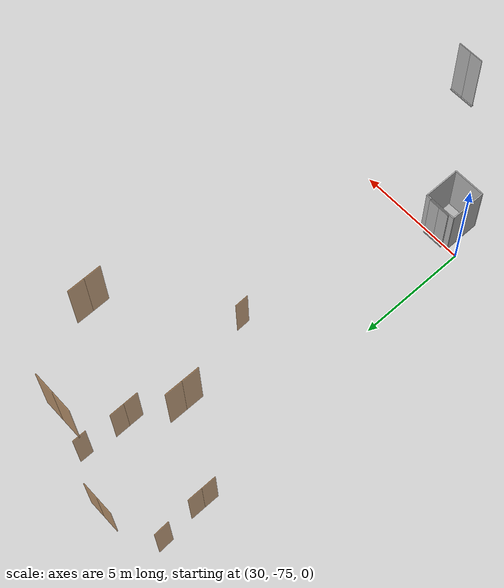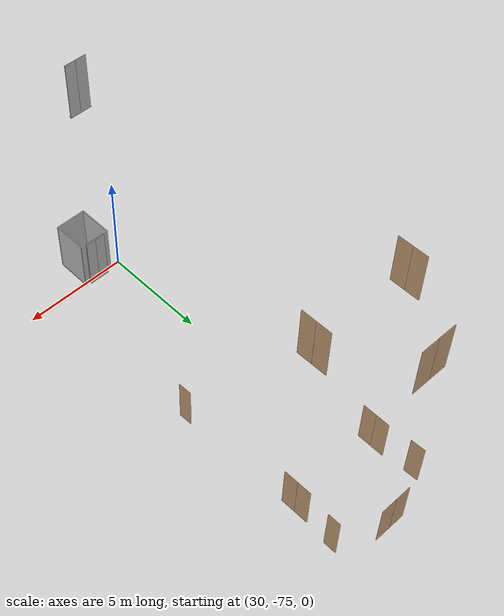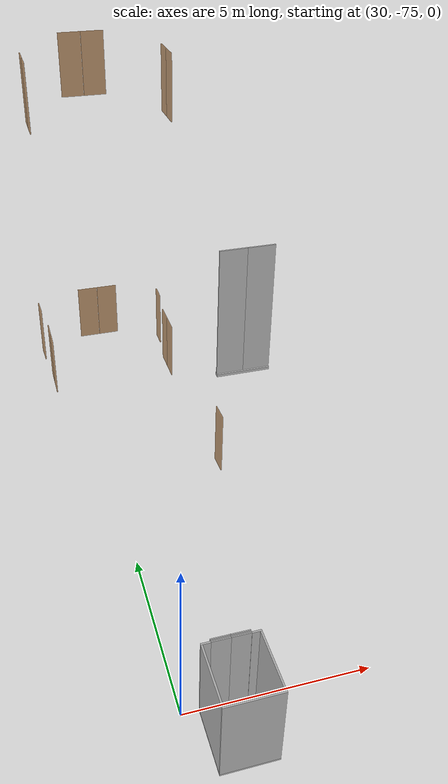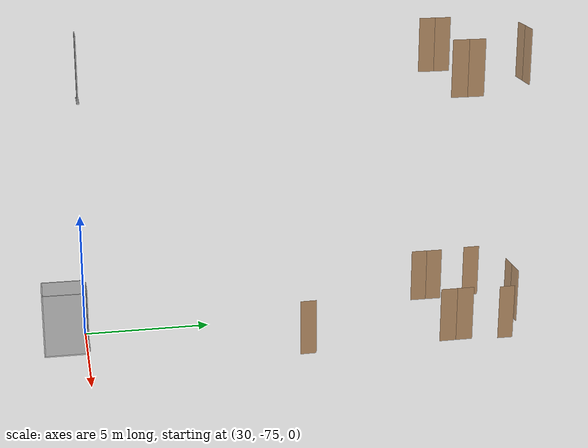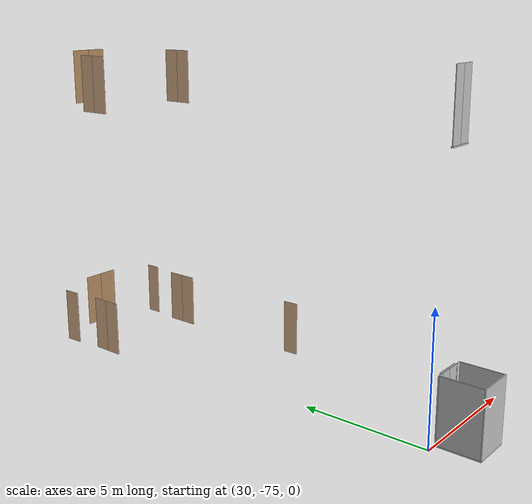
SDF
<sdf version="1.7">
 <world name="sim_world">
  <model name="door12">
   <pose>28.935081226566922 -60.41372925217037 0.0 0 0 1.569960739769453</pose>
   <link name="right">
    <pose>0.3295156354562787 0 1.11 0 0 0</pose>
    <visual name="right_visual">
     <geometry><box><size>0.6490312709125574 0.03 2.2</size></box></geometry>
     <material>
      <ambient>0.5 0.25 0 0.6</ambient>
      <diffuse>0.5 0.25 0 0.6</diffuse>
      <pbr><metal><metalness>0.0</metalness></metal></pbr>
     </material>
    </visual>
    <collision name="right_collision">
     <geometry><box><size>0.6490312709125574 0.03 2.2</size></box></geometry>
     <surface><contact><collide_bitmask>0x02</collide_bitmask></contact></surface>
    </collision>
    <inertial>
     <mass>50.0</mass>
     <inertia><ixx>20.17041666666667</ixx><iyy>21.921839960926548</iyy><izz>1.7589232942598731</izz></inertia>
    </inertial>
   </link>
   <joint name="right_joint" type="revolute">
    <parent>world</parent>
    <child>right</child>
    <axis><xyz>0 0 1</xyz><limit><lower>0</lower><upper>1.57</upper></limit></axis>
    <pose>0.3295156354562787 0 0 0 0 0</pose>
   </joint>
   <link name="left">
    <pose>-0.3295156354562787 0 1.11 0 0 0</pose>
    <visual name="left_visual">
     <geometry><box><size>0.6490312709125574 0.03 2.2</size></box></geometry>
     <material>
      <ambient>0.5 0.25 0 0.6</ambient>
      <diffuse>0.5 0.25 0 0.6</diffuse>
      <pbr><metal><metalness>0.0</metalness></metal></pbr>
     </material>
    </visual>
    <collision name="left_collision">
     <geometry><box><size>0.6490312709125574 0.03 2.2</size></box></geometry>
     <surface><contact><collide_bitmask>0x02</collide_bitmask></contact></surface>
    </collision>
    <inertial>
     <mass>50.0</mass>
     <inertia><ixx>20.17041666666667</ixx><iyy>21.921839960926548</iyy><izz>1.7589232942598731</izz></inertia>
    </inertial>
   </link>
   <joint name="left_joint" type="revolute">
    <parent>world</parent>
    <child>left</child>
    <axis><xyz>0 0 1</xyz><limit><lower>-1.57</lower><upper>0</upper></limit></axis>
    <pose>-0.3295156354562787 0 0 0 0 0</pose>
   </joint>
   <plugin name="register_component" filename="libregister_component.so">
    <component name="Door">
     <v_max_door>0.5</v_max_door>
     <a_max_door>0.3</a_max_door>
     <a_nom_door>0.15</a_nom_door>
     <dx_min_door>0.01</dx_min_door>
     <f_max_door>500.0</f_max_door>
     <ros_interface>true</ros_interface>
     <door name="door12" type="DoubleSwingDoor" left_joint_name="left_joint" right_joint_name="right_joint"/>
    </component>
   </plugin>
  </model>
  <model name="door14">
   <pose>28.795455392001728 -58.3927413031863 0.0 0 0 1.6107948883778462</pose>
   <link name="right">
    <pose>0 0 1.11 0 0 0</pose>
    <visual name="right_visual">
     <geometry><box><size>0.6894276678556776 0.03 2.2</size></box></geometry>
     <material>
      <ambient>0.5 0.25 0 0.6</ambient>
      <diffuse>0.5 0.25 0 0.6</diffuse>
      <pbr><metal><metalness>0.0</metalness></metal></pbr>
     </material>
    </visual>
    <collision name="right_collision">
     <geometry><box><size>0.6894276678556776 0.03 2.2</size></box></geometry>
     <surface><contact><collide_bitmask>0x02</collide_bitmask></contact></surface>
    </collision>
    <inertial>
     <mass>50.0</mass>
     <inertia><ixx>20.17041666666667</ixx><iyy>22.147127121687166</iyy><izz>1.9842104550204938</izz></inertia>
    </inertial>
   </link>
   <joint name="right_joint" type="revolute">
    <parent>world</parent>
    <child>right</child>
    <axis><xyz>0 0 1</xyz><limit><lower>0</lower><upper>1.57</upper></limit></axis>
    <pose>0.3497138339278388 0 0 0 0 0</pose>
   </joint>
   <plugin name="register_component" filename="libregister_component.so">
    <component name="Door">
     <v_max_door>0.5</v_max_door>
     <a_max_door>0.3</a_max_door>
     <a_nom_door>0.15</a_nom_door>
     <dx_min_door>0.01</dx_min_door>
     <f_max_door>500.0</f_max_door>
     <ros_interface>true</ros_interface>
     <door name="door14" type="SwingDoor" left_joint_name="empty_joint" right_joint_name="right_joint"/>
    </component>
   </plugin>
  </model>
  <model name="door15">
   <pose>33.50102716089975 -58.43092646915197 0.0 0 0 1.5700952612900068</pose>
   <link name="right">
    <pose>0 0 1.11 0 0 0</pose>
    <visual name="right_visual">
     <geometry><box><size>0.6101214510655555 0.03 2.2</size></box></geometry>
     <material>
      <ambient>0.5 0.25 0 0.6</ambient>
      <diffuse>0.5 0.25 0 0.6</diffuse>
      <pbr><metal><metalness>0.0</metalness></metal></pbr>
     </material>
    </visual>
    <collision name="right_collision">
     <geometry><box><size>0.6101214510655555 0.03 2.2</size></box></geometry>
     <surface><contact><collide_bitmask>0x02</collide_bitmask></contact></surface>
    </collision>
    <inertial>
     <mass>50.0</mass>
     <inertia><ixx>20.17041666666667</ixx><iyy>21.717700771043084</iyy><izz>1.5547841043764128</izz></inertia>
    </inertial>
   </link>
   <joint name="right_joint" type="revolute">
    <parent>world</parent>
    <child>right</child>
    <axis><xyz>0 0 -1</xyz><limit><lower>0</lower><upper>1.57</upper></limit></axis>
    <pose>0.31006072553277775 0 0 0 0 0</pose>
   </joint>
   <plugin name="register_component" filename="libregister_component.so">
    <component name="Door">
     <v_max_door>0.5</v_max_door>
     <a_max_door>0.3</a_max_door>
     <a_nom_door>0.15</a_nom_door>
     <dx_min_door>0.01</dx_min_door>
     <f_max_door>500.0</f_max_door>
     <ros_interface>true</ros_interface>
     <door name="door15" type="SwingDoor" left_joint_name="empty_joint" right_joint_name="right_joint"/>
    </component>
   </plugin>
  </model>
  <model name="door13">
   <pose>33.36353158037515 -60.44103128354773 0.0 0 0 1.5796133810395057</pose>
   <link name="right">
    <pose>0.3377598348170645 0 1.11 0 0 0</pose>
    <visual name="right_visual">
     <geometry><box><size>0.665519669634129 0.03 2.2</size></box></geometry>
     <material>
      <ambient>0.5 0.25 0 0.6</ambient>
      <diffuse>0.5 0.25 0 0.6</diffuse>
      <pbr><metal><metalness>0.0</metalness></metal></pbr>
     </material>
    </visual>
    <collision name="right_collision">
     <geometry><box><size>0.665519669634129 0.03 2.2</size></box></geometry>
     <surface><contact><collide_bitmask>0x02</collide_bitmask></contact></surface>
    </collision>
    <inertial>
     <mass>50.0</mass>
     <inertia><ixx>20.17041666666667</ixx><iyy>22.012151794458006</iyy><izz>1.8492351277913344</izz></inertia>
    </inertial>
   </link>
   <joint name="right_joint" type="revolute">
    <parent>world</parent>
    <child>right</child>
    <axis><xyz>0 0 -1</xyz><limit><lower>0</lower><upper>1.57</upper></limit></axis>
    <pose>0.3377598348170645 0 0 0 0 0</pose>
   </joint>
   <link name="left">
    <pose>-0.3377598348170645 0 1.11 0 0 0</pose>
    <visual name="left_visual">
     <geometry><box><size>0.665519669634129 0.03 2.2</size></box></geometry>
     <material>
      <ambient>0.5 0.25 0 0.6</ambient>
      <diffuse>0.5 0.25 0 0.6</diffuse>
      <pbr><metal><metalness>0.0</metalness></metal></pbr>
     </material>
    </visual>
    <collision name="left_collision">
     <geometry><box><size>0.665519669634129 0.03 2.2</size></box></geometry>
     <surface><contact><collide_bitmask>0x02</collide_bitmask></contact></surface>
    </collision>
    <inertial>
     <mass>50.0</mass>
     <inertia><ixx>20.17041666666667</ixx><iyy>22.012151794458006</iyy><izz>1.8492351277913344</izz></inertia>
    </inertial>
   </link>
   <joint name="left_joint" type="revolute">
    <parent>world</parent>
    <child>left</child>
    <axis><xyz>0 0 -1</xyz><limit><lower>-1.57</lower><upper>0</upper></limit></axis>
    <pose>-0.3377598348170645 0 0 0 0 0</pose>
   </joint>
   <plugin name="register_component" filename="libregister_component.so">
    <component name="Door">
     <v_max_door>0.5</v_max_door>
     <a_max_door>0.3</a_max_door>
     <a_nom_door>0.15</a_nom_door>
     <dx_min_door>0.01</dx_min_door>
     <f_max_door>500.0</f_max_door>
     <ros_interface>true</ros_interface>
     <door name="door13" type="DoubleSwingDoor" left_joint_name="left_joint" right_joint_name="right_joint"/>
    </component>
   </plugin>
  </model>
  <model name="door16">
   <pose>33.572832662744126 -66.50612538454055 0.0 0 0 1.5991199512423215</pose>
   <link name="right">
    <pose>0 0 1.11 0 0 0</pose>
    <visual name="right_visual">
     <geometry><box><size>0.6245195237357324 0.03 2.2</size></box></geometry>
     <material>
      <ambient>0.5 0.25 0 0.6</ambient>
      <diffuse>0.5 0.25 0 0.6</diffuse>
      <pbr><metal><metalness>0.0</metalness></metal></pbr>
     </material>
    </visual>
    <collision name="right_collision">
     <geometry><box><size>0.6245195237357324 0.03 2.2</size></box></geometry>
     <surface><contact><collide_bitmask>0x02</collide_bitmask></contact></surface>
    </collision>
    <inertial>
     <mass>50.0</mass>
     <inertia><ixx>20.17041666666667</ixx><iyy>21.79176931469628</iyy><izz>1.6288526480296084</izz></inertia>
    </inertial>
   </link>
   <joint name="right_joint" type="revolute">
    <parent>world</parent>
    <child>right</child>
    <axis><xyz>0 0 1</xyz><limit><lower>0</lower><upper>1.57</upper></limit></axis>
    <pose>0.3172597618678662 0 0 0 0 0</pose>
   </joint>
   <plugin name="register_component" filename="libregister_component.so">
    <component name="Door">
     <v_max_door>0.5</v_max_door>
     <a_max_door>0.3</a_max_door>
     <a_nom_door>0.15</a_nom_door>
     <dx_min_door>0.01</dx_min_door>
     <f_max_door>500.0</f_max_door>
     <ros_interface>true</ros_interface>
     <door name="door16" type="SwingDoor" left_joint_name="empty_joint" right_joint_name="right_joint"/>
    </component>
   </plugin>
  </model>
  <model name="puerta">
   <pose>31.205294406775927 -57.41643283401229 0.0 0 0 3.1406176295231623</pose>
   <link name="right">
    <pose>0.38643116495243063 0 1.11 0 0 0</pose>
    <visual name="right_visual">
     <geometry><box><size>0.7628623299048612 0.03 2.2</size></box></geometry>
     <material>
      <ambient>0.5 0.25 0 0.6</ambient>
      <diffuse>0.5 0.25 0 0.6</diffuse>
      <pbr><metal><metalness>0.0</metalness></metal></pbr>
     </material>
    </visual>
    <collision name="right_collision">
     <geometry><box><size>0.7628623299048612 0.03 2.2</size></box></geometry>
     <surface><contact><collide_bitmask>0x02</collide_bitmask></contact></surface>
    </collision>
    <inertial>
     <mass>50.0</mass>
     <inertia><ixx>20.17041666666667</ixx><iyy>22.591495559949475</iyy><izz>2.428578893282806</izz></inertia>
    </inertial>
   </link>
   <joint name="right_joint" type="revolute">
    <parent>world</parent>
    <child>right</child>
    <axis><xyz>0 0 1</xyz><limit><lower>0</lower><upper>1.57</upper></limit></axis>
    <pose>0.38643116495243063 0 0 0 0 0</pose>
   </joint>
   <link name="left">
    <pose>-0.38643116495243063 0 1.11 0 0 0</pose>
    <visual name="left_visual">
     <geometry><box><size>0.7628623299048612 0.03 2.2</size></box></geometry>
     <material>
      <ambient>0.5 0.25 0 0.6</ambient>
      <diffuse>0.5 0.25 0 0.6</diffuse>
      <pbr><metal><metalness>0.0</metalness></metal></pbr>
     </material>
    </visual>
    <collision name="left_collision">
     <geometry><box><size>0.7628623299048612 0.03 2.2</size></box></geometry>
     <surface><contact><collide_bitmask>0x02</collide_bitmask></contact></surface>
    </collision>
    <inertial>
     <mass>50.0</mass>
     <inertia><ixx>20.17041666666667</ixx><iyy>22.591495559949475</iyy><izz>2.428578893282806</izz></inertia>
    </inertial>
   </link>
   <joint name="left_joint" type="revolute">
    <parent>world</parent>
    <child>left</child>
    <axis><xyz>0 0 1</xyz><limit><lower>-1.57</lower><upper>0</upper></limit></axis>
    <pose>-0.38643116495243063 0 0 0 0 0</pose>
   </joint>
   <plugin name="register_component" filename="libregister_component.so">
    <component name="Door">
     <v_max_door>0.5</v_max_door>
     <a_max_door>0.3</a_max_door>
     <a_nom_door>0.15</a_nom_door>
     <dx_min_door>0.01</dx_min_door>
     <f_max_door>500.0</f_max_door>
     <ros_interface>true</ros_interface>
     <door name="puerta" type="DoubleSwingDoor" left_joint_name="left_joint" right_joint_name="right_joint"/>
    </component>
   </plugin>
  </model>
  <model name="N1_door9">
   <pose>28.89946891818777 -60.385027336935984 10.0 0 0 1.5671725025709047</pose>
   <link name="right">
    <pose>0.3249356418013094 0 1.11 0 0 0</pose>
    <visual name="right_visual">
     <geometry><box><size>0.6398712836026188 0.03 2.2</size></box></geometry>
     <material>
      <ambient>0.5 0.25 0 0.6</ambient>
      <diffuse>0.5 0.25 0 0.6</diffuse>
      <pbr><metal><metalness>0.0</metalness></metal></pbr>
     </material>
    </visual>
    <collision name="right_collision">
     <geometry><box><size>0.6398712836026188 0.03 2.2</size></box></geometry>
     <surface><contact><collide_bitmask>0x02</collide_bitmask></contact></surface>
    </collision>
    <inertial>
     <mass>50.0</mass>
     <inertia><ixx>20.17041666666667</ixx><iyy>21.872646914913602</iyy><izz>1.7097302482469294</izz></inertia>
    </inertial>
   </link>
   <joint name="right_joint" type="revolute">
    <parent>world</parent>
    <child>right</child>
    <axis><xyz>0 0 1</xyz><limit><lower>0</lower><upper>1.57</upper></limit></axis>
    <pose>0.3249356418013094 0 0 0 0 0</pose>
   </joint>
   <link name="left">
    <pose>-0.3249356418013094 0 1.11 0 0 0</pose>
    <visual name="left_visual">
     <geometry><box><size>0.6398712836026188 0.03 2.2</size></box></geometry>
     <material>
      <ambient>0.5 0.25 0 0.6</ambient>
      <diffuse>0.5 0.25 0 0.6</diffuse>
      <pbr><metal><metalness>0.0</metalness></metal></pbr>
     </material>
    </visual>
    <collision name="left_collision">
     <geometry><box><size>0.6398712836026188 0.03 2.2</size></box></geometry>
     <surface><contact><collide_bitmask>0x02</collide_bitmask></contact></surface>
    </collision>
    <inertial>
     <mass>50.0</mass>
     <inertia><ixx>20.17041666666667</ixx><iyy>21.872646914913602</iyy><izz>1.7097302482469294</izz></inertia>
    </inertial>
   </link>
   <joint name="left_joint" type="revolute">
    <parent>world</parent>
    <child>left</child>
    <axis><xyz>0 0 1</xyz><limit><lower>-1.57</lower><upper>0</upper></limit></axis>
    <pose>-0.3249356418013094 0 0 0 0 0</pose>
   </joint>
   <plugin name="register_component" filename="libregister_component.so">
    <component name="Door">
     <v_max_door>0.5</v_max_door>
     <a_max_door>0.3</a_max_door>
     <a_nom_door>0.15</a_nom_door>
     <dx_min_door>0.01</dx_min_door>
     <f_max_door>500.0</f_max_door>
     <ros_interface>true</ros_interface>
     <door name="N1_door9" type="DoubleSwingDoor" left_joint_name="left_joint" right_joint_name="right_joint"/>
    </component>
   </plugin>
  </model>
  <model name="N1_door10">
   <pose>33.458639962145945 -60.40938363383698 10.0 0 0 1.5785026149649999</pose>
   <link name="right">
    <pose>0.32214595459413703 0 1.11 0 0 0</pose>
    <visual name="right_visual">
     <geometry><box><size>0.634291909188274 0.03 2.2</size></box></geometry>
     <material>
      <ambient>0.5 0.25 0 0.6</ambient>
      <diffuse>0.5 0.25 0 0.6</diffuse>
      <pbr><metal><metalness>0.0</metalness></metal></pbr>
     </material>
    </visual>
    <collision name="right_collision">
     <geometry><box><size>0.634291909188274 0.03 2.2</size></box></geometry>
     <surface><contact><collide_bitmask>0x02</collide_bitmask></contact></surface>
    </collision>
    <inertial>
     <mass>50.0</mass>
     <inertia><ixx>20.17041666666667</ixx><iyy>21.843025941923777</iyy><izz>1.6801092752571072</izz></inertia>
    </inertial>
   </link>
   <joint name="right_joint" type="revolute">
    <parent>world</parent>
    <child>right</child>
    <axis><xyz>0 0 -1</xyz><limit><lower>0</lower><upper>1.57</upper></limit></axis>
    <pose>0.32214595459413703 0 0 0 0 0</pose>
   </joint>
   <link name="left">
    <pose>-0.32214595459413703 0 1.11 0 0 0</pose>
    <visual name="left_visual">
     <geometry><box><size>0.634291909188274 0.03 2.2</size></box></geometry>
     <material>
      <ambient>0.5 0.25 0 0.6</ambient>
      <diffuse>0.5 0.25 0 0.6</diffuse>
      <pbr><metal><metalness>0.0</metalness></metal></pbr>
     </material>
    </visual>
    <collision name="left_collision">
     <geometry><box><size>0.634291909188274 0.03 2.2</size></box></geometry>
     <surface><contact><collide_bitmask>0x02</collide_bitmask></contact></surface>
    </collision>
    <inertial>
     <mass>50.0</mass>
     <inertia><ixx>20.17041666666667</ixx><iyy>21.843025941923777</iyy><izz>1.6801092752571072</izz></inertia>
    </inertial>
   </link>
   <joint name="left_joint" type="revolute">
    <parent>world</parent>
    <child>left</child>
    <axis><xyz>0 0 -1</xyz><limit><lower>-1.57</lower><upper>0</upper></limit></axis>
    <pose>-0.32214595459413703 0 0 0 0 0</pose>
   </joint>
   <plugin name="register_component" filename="libregister_component.so">
    <component name="Door">
     <v_max_door>0.5</v_max_door>
     <a_max_door>0.3</a_max_door>
     <a_nom_door>0.15</a_nom_door>
     <dx_min_door>0.01</dx_min_door>
     <f_max_door>500.0</f_max_door>
     <ros_interface>true</ros_interface>
     <door name="N1_door10" type="DoubleSwingDoor" left_joint_name="left_joint" right_joint_name="right_joint"/>
    </component>
   </plugin>
  </model>
  <model name="N1_door11_end">
   <pose>31.193165402796247 -57.39837586557639 10.0 0 0 3.1361201973711506</pose>
   <link name="right">
    <pose>0.39628764099233954 0 1.11 0 0 0</pose>
    <visual name="right_visual">
     <geometry><box><size>0.7825752819846791 0.03 2.2</size></box></geometry>
     <material>
      <ambient>0.5 0.25 0 0.6</ambient>
      <diffuse>0.5 0.25 0 0.6</diffuse>
      <pbr><metal><metalness>0.0</metalness></metal></pbr>
     </material>
    </visual>
    <collision name="right_collision">
     <geometry><box><size>0.7825752819846791 0.03 2.2</size></box></geometry>
     <surface><contact><collide_bitmask>0x02</collide_bitmask></contact></surface>
    </collision>
    <inertial>
     <mass>50.0</mass>
     <inertia><ixx>20.17041666666667</ixx><iyy>22.718433633222503</iyy><izz>2.5555169665558335</izz></inertia>
    </inertial>
   </link>
   <joint name="right_joint" type="revolute">
    <parent>world</parent>
    <child>right</child>
    <axis><xyz>0 0 1</xyz><limit><lower>0</lower><upper>1.57</upper></limit></axis>
    <pose>0.39628764099233954 0 0 0 0 0</pose>
   </joint>
   <link name="left">
    <pose>-0.39628764099233954 0 1.11 0 0 0</pose>
    <visual name="left_visual">
     <geometry><box><size>0.7825752819846791 0.03 2.2</size></box></geometry>
     <material>
      <ambient>0.5 0.25 0 0.6</ambient>
      <diffuse>0.5 0.25 0 0.6</diffuse>
      <pbr><metal><metalness>0.0</metalness></metal></pbr>
     </material>
    </visual>
    <collision name="left_collision">
     <geometry><box><size>0.7825752819846791 0.03 2.2</size></box></geometry>
     <surface><contact><collide_bitmask>0x02</collide_bitmask></contact></surface>
    </collision>
    <inertial>
     <mass>50.0</mass>
     <inertia><ixx>20.17041666666667</ixx><iyy>22.718433633222503</iyy><izz>2.5555169665558335</izz></inertia>
    </inertial>
   </link>
   <joint name="left_joint" type="revolute">
    <parent>world</parent>
    <child>left</child>
    <axis><xyz>0 0 1</xyz><limit><lower>-1.57</lower><upper>0</upper></limit></axis>
    <pose>-0.39628764099233954 0 0 0 0 0</pose>
   </joint>
   <plugin name="register_component" filename="libregister_component.so">
    <component name="Door">
     <v_max_door>0.5</v_max_door>
     <a_max_door>0.3</a_max_door>
     <a_nom_door>0.15</a_nom_door>
     <dx_min_door>0.01</dx_min_door>
     <f_max_door>500.0</f_max_door>
     <ros_interface>true</ros_interface>
     <door name="N1_door11_end" type="DoubleSwingDoor" left_joint_name="left_joint" right_joint_name="right_joint"/>
    </component>
   </plugin>
  </model>
  <model name="ShaftDoor_lift_izq_TD_n0_door_lift_izq">
   <pose>31.211989490903495 -74.91965401609569 0.0 0 0 0.0</pose>
   <link name="right_door">
    <pose>0.25 0 1.25 0 0 0</pose>
    <visual name="right_door_visual">
     <geometry><box><size>0.5 0.03 2.5</size></box></geometry>
     <material>
      <ambient>0.5 0.5 0.5 1</ambient>
      <diffuse>0.7 0.7 0.7 1</diffuse>
      <specular>0.6 0.6 0.6 1</specular>
      <emissive>0.1 0.1 0.1 1</emissive>
     </material>
    </visual>
    <collision name="right_door_collision">
     <geometry><box><size>0.5 0.03 2.5</size></box></geometry>
     <surface><contact><collide_bitmask>0x02</collide_bitmask></contact></surface>
    </collision>
   </link>
   <link name="left_door">
    <pose>-0.25 0 1.25 0 0 0</pose>
    <visual name="left_door_visual">
     <geometry><box><size>0.5 0.03 2.5</size></box></geometry>
     <material>
      <ambient>0.5 0.5 0.5 1</ambient>
      <diffuse>0.7 0.7 0.7 1</diffuse>
      <specular>0.6 0.6 0.6 1</specular>
      <emissive>0.1 0.1 0.1 1</emissive>
     </material>
    </visual>
    <collision name="left_door_collision">
     <geometry><box><size>0.5 0.03 2.5</size></box></geometry>
     <surface><contact><collide_bitmask>0x02</collide_bitmask></contact></surface>
    </collision>
   </link>
   <joint name="right_joint" type="prismatic">
    <parent>world</parent>
    <child>right_door</child>
    <axis><xyz>1 0 0</xyz><limit><lower>0</lower><upper>0.5</upper></limit></axis>
   </joint>
   <joint name="left_joint" type="prismatic">
    <parent>world</parent>
    <child>left_door</child>
    <axis><xyz>1 0 0</xyz><limit><lower>-0.5</lower><upper>0</upper></limit></axis>
   </joint>
   <link name="ramp">
    <pose>0 0 -0.025 0 0 0</pose>
    <visual name="ramp_visual">
     <geometry><box><size>1.0 0.1 0.05</size></box></geometry>
     <material>
      <ambient>0.5 0.5 0.5 1</ambient>
      <diffuse>0.7 0.7 0.7 1</diffuse>
      <specular>0.6 0.6 0.6 1</specular>
      <emissive>0.1 0.1 0.1 1</emissive>
     </material>
    </visual>
    <collision name="ramp_collision">
     <geometry><box><size>1.0 0.1 0.05</size></box></geometry>
     <surface><contact><collide_bitmask>0x02</collide_bitmask></contact></surface>
    </collision>
   </link>
   <joint name="ramp_joint" type="fixed"><parent>world</parent><child>ramp</child></joint>
   <plugin name="register_component" filename="libregister_component.so">
    <component name="Door">
     <v_max_door>0.3</v_max_door>
     <a_max_door>0.2</a_max_door>
     <a_nom_door>0.1</a_nom_door>
     <dx_min_door>0.0001</dx_min_door>
     <f_max_door>35.0</f_max_door>
     <door left_joint_name="left_joint" name="ShaftDoor_lift_izq_TD_n0_door_lift_izq" right_joint_name="right_joint" type="DoubleSlidingDoor"/>
    </component>
   </plugin>
  </model>
  <model name="ShaftDoor_lift_izq_TD_n1_door_lift_izq">
   <pose>31.211989490903495 -74.91965401609569 10.0 0 0 0.0</pose>
   <link name="right_door">
    <pose>0.25 0 1.25 0 0 0</pose>
    <visual name="right_door_visual">
     <geometry><box><size>0.5 0.03 2.5</size></box></geometry>
     <material>
      <ambient>0.5 0.5 0.5 1</ambient>
      <diffuse>0.7 0.7 0.7 1</diffuse>
      <specular>0.6 0.6 0.6 1</specular>
      <emissive>0.1 0.1 0.1 1</emissive>
     </material>
    </visual>
    <collision name="right_door_collision">
     <geometry><box><size>0.5 0.03 2.5</size></box></geometry>
     <surface><contact><collide_bitmask>0x02</collide_bitmask></contact></surface>
    </collision>
   </link>
   <link name="left_door">
    <pose>-0.25 0 1.25 0 0 0</pose>
    <visual name="left_door_visual">
     <geometry><box><size>0.5 0.03 2.5</size></box></geometry>
     <material>
      <ambient>0.5 0.5 0.5 1</ambient>
      <diffuse>0.7 0.7 0.7 1</diffuse>
      <specular>0.6 0.6 0.6 1</specular>
      <emissive>0.1 0.1 0.1 1</emissive>
     </material>
    </visual>
    <collision name="left_door_collision">
     <geometry><box><size>0.5 0.03 2.5</size></box></geometry>
     <surface><contact><collide_bitmask>0x02</collide_bitmask></contact></surface>
    </collision>
   </link>
   <joint name="right_joint" type="prismatic">
    <parent>world</parent>
    <child>right_door</child>
    <axis><xyz>1 0 0</xyz><limit><lower>0</lower><upper>0.5</upper></limit></axis>
   </joint>
   <joint name="left_joint" type="prismatic">
    <parent>world</parent>
    <child>left_door</child>
    <axis><xyz>1 0 0</xyz><limit><lower>-0.5</lower><upper>0</upper></limit></axis>
   </joint>
   <link name="ramp">
    <pose>0 0 -0.025 0 0 0</pose>
    <visual name="ramp_visual">
     <geometry><box><size>1.0 0.1 0.05</size></box></geometry>
     <material>
      <ambient>0.5 0.5 0.5 1</ambient>
      <diffuse>0.7 0.7 0.7 1</diffuse>
      <specular>0.6 0.6 0.6 1</specular>
      <emissive>0.1 0.1 0.1 1</emissive>
     </material>
    </visual>
    <collision name="ramp_collision">
     <geometry><box><size>1.0 0.1 0.05</size></box></geometry>
     <surface><contact><collide_bitmask>0x02</collide_bitmask></contact></surface>
    </collision>
   </link>
   <joint name="ramp_joint" type="fixed"><parent>world</parent><child>ramp</child></joint>
   <plugin name="register_component" filename="libregister_component.so">
    <component name="Door">
     <v_max_door>0.3</v_max_door>
     <a_max_door>0.2</a_max_door>
     <a_nom_door>0.1</a_nom_door>
     <dx_min_door>0.0001</dx_min_door>
     <f_max_door>35.0</f_max_door>
     <door left_joint_name="left_joint" name="ShaftDoor_lift_izq_TD_n1_door_lift_izq" right_joint_name="right_joint" type="DoubleSlidingDoor"/>
    </component>
   </plugin>
  </model>
  <model name="lift_izq">
   <link name="platform">
    <inertial>
     <mass>1200</mass>
     <inertia><ixx>225.25</ixx><iyy>289.24999999999994</iyy><izz>514.0</izz></inertia>
    </inertial>
    <visual name="floor_visual">
     <pose>0 0 -0.025 0 0 0</pose>
     <geometry><box><size>1.5 1.7 0.05</size></box></geometry>
     <material>
      <ambient>0.5 0.5 0.5 1</ambient>
      <diffuse>0.7 0.7 0.7 1</diffuse>
      <specular>0.6 0.6 0.6 1</specular>
      <emissive>0.1 0.1 0.1 1</emissive>
     </material>
    </visual>
    <collision name="floor_collision">
     <pose>0 0 -0.025 0 0 0</pose>
     <geometry><box><size>1.5 1.7 0.05</size></box></geometry>
     <surface><contact><collide_bitmask>0x01</collide_bitmask></contact></surface>
    </collision>
    <visual name="frontwall1_visual">
     <pose>-0.625 0.825 1.25 0 0 0</pose>
     <geometry><box><size>0.25 0.05 2.5</size></box></geometry>
     <material>
      <ambient>0.5 0.5 0.5 1</ambient>
      <diffuse>0.7 0.7 0.7 1</diffuse>
      <specular>0.6 0.6 0.6 1</specular>
      <emissive>0.1 0.1 0.1 1</emissive>
     </material>
    </visual>
    <collision name="frontwall1_collision">
     <pose>-0.625 0.825 1.25 0 0 0</pose>
     <geometry><box><size>0.25 0.05 2.5</size></box></geometry>
     <surface><contact><collide_bitmask>0x01</collide_bitmask></contact></surface>
    </collision>
    <visual name="frontwall2_visual">
     <pose>0.625 0.825 1.25 0 0 0</pose>
     <geometry><box><size>0.25 0.05 2.5</size></box></geometry>
     <material>
      <ambient>0.5 0.5 0.5 1</ambient>
      <diffuse>0.7 0.7 0.7 1</diffuse>
      <specular>0.6 0.6 0.6 1</specular>
      <emissive>0.1 0.1 0.1 1</emissive>
     </material>
    </visual>
    <collision name="frontwall2_collision">
     <pose>0.625 0.825 1.25 0 0 0</pose>
     <geometry><box><size>0.25 0.05 2.5</size></box></geometry>
     <surface><contact><collide_bitmask>0x01</collide_bitmask></contact></surface>
    </collision>
    <visual name="backwall1_visual">
     <pose>0.0 -0.825 1.25 0 0 0</pose>
     <geometry><box><size>1.5 0.05 2.5</size></box></geometry>
     <material>
      <ambient>0.5 0.5 0.5 1</ambient>
      <diffuse>0.7 0.7 0.7 1</diffuse>
      <specular>0.6 0.6 0.6 1</specular>
      <emissive>0.1 0.1 0.1 1</emissive>
     </material>
    </visual>
    <collision name="backwall1_collision">
     <pose>0.0 -0.825 1.25 0 0 0</pose>
     <geometry><box><size>1.5 0.05 2.5</size></box></geometry>
     <surface><contact><collide_bitmask>0x01</collide_bitmask></contact></surface>
    </collision>
    <visual name="leftwall1_visual">
     <pose>-0.725 0.0 1.25 0 0 1.5707963267948966</pose>
     <geometry><box><size>1.5999999999999999 0.05 2.5</size></box></geometry>
     <material>
      <ambient>0.5 0.5 0.5 1</ambient>
      <diffuse>0.7 0.7 0.7 1</diffuse>
      <specular>0.6 0.6 0.6 1</specular>
      <emissive>0.1 0.1 0.1 1</emissive>
     </material>
    </visual>
    <collision name="leftwall1_collision">
     <pose>-0.725 0.0 1.25 0 0 1.5707963267948966</pose>
     <geometry><box><size>1.5999999999999999 0.05 2.5</size></box></geometry>
     <surface><contact><collide_bitmask>0x01</collide_bitmask></contact></surface>
    </collision>
    <visual name="rightwall1_visual">
     <pose>0.725 0.0 1.25 0 0 1.5707963267948966</pose>
     <geometry><box><size>1.5999999999999999 0.05 2.5</size></box></geometry>
     <material>
      <ambient>0.5 0.5 0.5 1</ambient>
      <diffuse>0.7 0.7 0.7 1</diffuse>
      <specular>0.6 0.6 0.6 1</specular>
      <emissive>0.1 0.1 0.1 1</emissive>
     </material>
    </visual>
    <collision name="rightwall1_collision">
     <pose>0.725 0.0 1.25 0 0 1.5707963267948966</pose>
     <geometry><box><size>1.5999999999999999 0.05 2.5</size></box></geometry>
     <surface><contact><collide_bitmask>0x01</collide_bitmask></contact></surface>
    </collision>
   </link>
   <joint name="cabin_joint" type="prismatic">
    <parent>world</parent>
    <child>platform</child>
    <axis><xyz>0 0 1</xyz></axis>
   </joint>
   <model name="CabinDoor_lift_izq_door_lift_izq">
    <pose>0.0 0.825 0 0 0 0.0</pose>
    <link name="right_door">
     <pose>0.25 0 1.25 0 0 0</pose>
     <visual name="right_door_visual">
      <geometry><box><size>0.5 0.03 2.5</size></box></geometry>
      <material>
       <ambient>0.5 0.5 0.5 1</ambient>
       <diffuse>0.7 0.7 0.7 1</diffuse>
       <specular>0.6 0.6 0.6 1</specular>
       <emissive>0.1 0.1 0.1 1</emissive>
      </material>
     </visual>
     <collision name="right_door_collision">
      <geometry><box><size>0.5 0.03 2.5</size></box></geometry>
      <surface><contact><collide_bitmask>0x02</collide_bitmask></contact></surface>
     </collision>
    </link>
    <link name="left_door">
     <pose>-0.25 0 1.25 0 0 0</pose>
     <visual name="left_door_visual">
      <geometry><box><size>0.5 0.03 2.5</size></box></geometry>
      <material>
       <ambient>0.5 0.5 0.5 1</ambient>
       <diffuse>0.7 0.7 0.7 1</diffuse>
       <specular>0.6 0.6 0.6 1</specular>
       <emissive>0.1 0.1 0.1 1</emissive>
      </material>
     </visual>
     <collision name="left_door_collision">
      <geometry><box><size>0.5 0.03 2.5</size></box></geometry>
      <surface><contact><collide_bitmask>0x02</collide_bitmask></contact></surface>
     </collision>
    </link>
    <plugin name="register_component" filename="libregister_component.so">
     <component name="Door">
      <v_max_door>0.3</v_max_door>
      <a_max_door>0.2</a_max_door>
      <a_nom_door>0.1</a_nom_door>
      <dx_min_door>0.0001</dx_min_door>
      <f_max_door>35.0</f_max_door>
      <door left_joint_name="CabinDoor_lift_izq_door_lift_izq_left_joint" name="CabinDoor_lift_izq_door_lift_izq" right_joint_name="CabinDoor_lift_izq_door_lift_izq_right_joint" type="DoubleSlidingDoor"/>
     </component>
    </plugin>
   </model>
   <joint name="CabinDoor_lift_izq_door_lift_izq_right_joint" type="prismatic">
    <parent>platform</parent>
    <child>CabinDoor_lift_izq_door_lift_izq::right_door</child>
    <axis><xyz>1 0 0</xyz><limit><lower>0</lower><upper>0.5</upper></limit></axis>
   </joint>
   <joint name="CabinDoor_lift_izq_door_lift_izq_left_joint" type="prismatic">
    <parent>platform</parent>
    <child>CabinDoor_lift_izq_door_lift_izq::left_door</child>
    <axis><xyz>1 0 0</xyz><limit><lower>-0.5</lower><upper>0</upper></limit></axis>
   </joint>
   <plugin name="register_component" filename="libregister_component.so">
    <component name="Lift">
     <lift_name>lift_izq</lift_name>
     <floor name="TD_n0" elevation="0.0">
      <door_pair cabin_door="CabinDoor_lift_izq_door_lift_izq" shaft_door="ShaftDoor_lift_izq_TD_n0_door_lift_izq"/>
     </floor>
     <floor name="TD_n1" elevation="10.0">
      <door_pair cabin_door="CabinDoor_lift_izq_door_lift_izq" shaft_door="ShaftDoor_lift_izq_TD_n1_door_lift_izq"/>
     </floor>
     <initial_floor>TD_n0</initial_floor>
     <v_max_cabin>2.0</v_max_cabin>
     <a_max_cabin>1.2</a_max_cabin>
     <a_nom_cabin>1.0</a_nom_cabin>
     <dx_min_cabin>0.001</dx_min_cabin>
     <f_max_cabin>25323.0</f_max_cabin>
     <cabin_joint_name>cabin_joint</cabin_joint_name>
    </component>
   </plugin>
   <pose>31.211989490903495 -75.8196540160957 0 0 0 0.0</pose>
  </model>
 </world>
</sdf>
